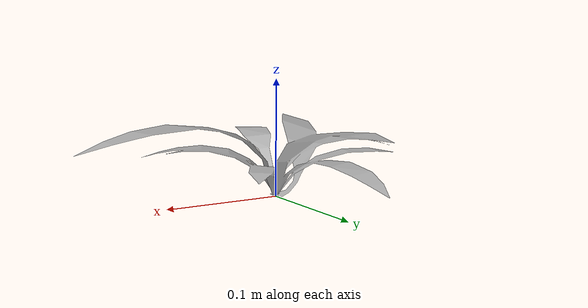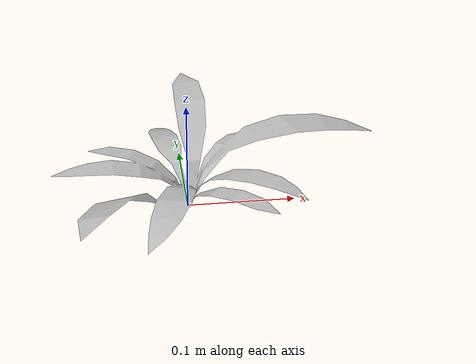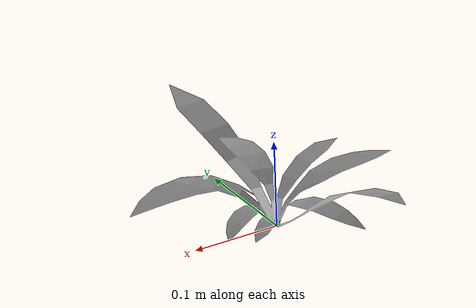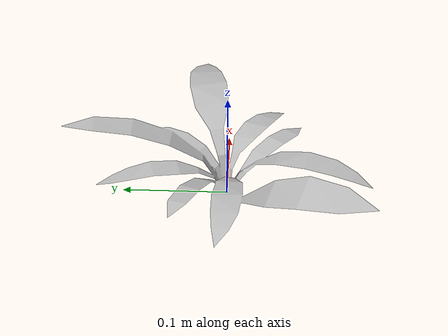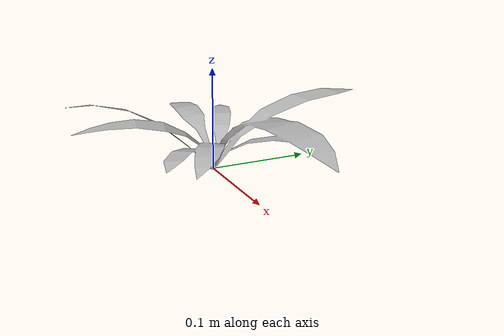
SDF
<?xml version="1.0"?>
<sdf version="1.6">
  <model name="unknown_weed">
    <static>false</static>
    <link name="link">
      <inertial>
        <mass>0.1</mass>
        <inertia>
          <ixx>0.0000658333</ixx>
          <ixy>0</ixy>
          <ixz>0</ixz>
          <iyy>0.0000658333</iyy>
          <iyz>0</iyz>
          <izz>0.000125</izz>
        </inertia>
        <pose>0 0 0.005 0 0 0 0 0</pose>
      </inertial>
      <visual name="visual">
        <geometry>
          <mesh>
            <uri>model://unknown_weed/meshes/unknown_weed.dae</uri>
            <scale>2 2 2</scale>
          </mesh>
        </geometry>
        <material>
          <script>
            <uri>model://unknown_weed/materials/scripts/</uri>
            <uri>model://unknown_weed/materials/textures/</uri>
            <name>unknown_weed_leaf</name>
          </script>
        </material>
      </visual>
    </link>
  </model>
</sdf>
